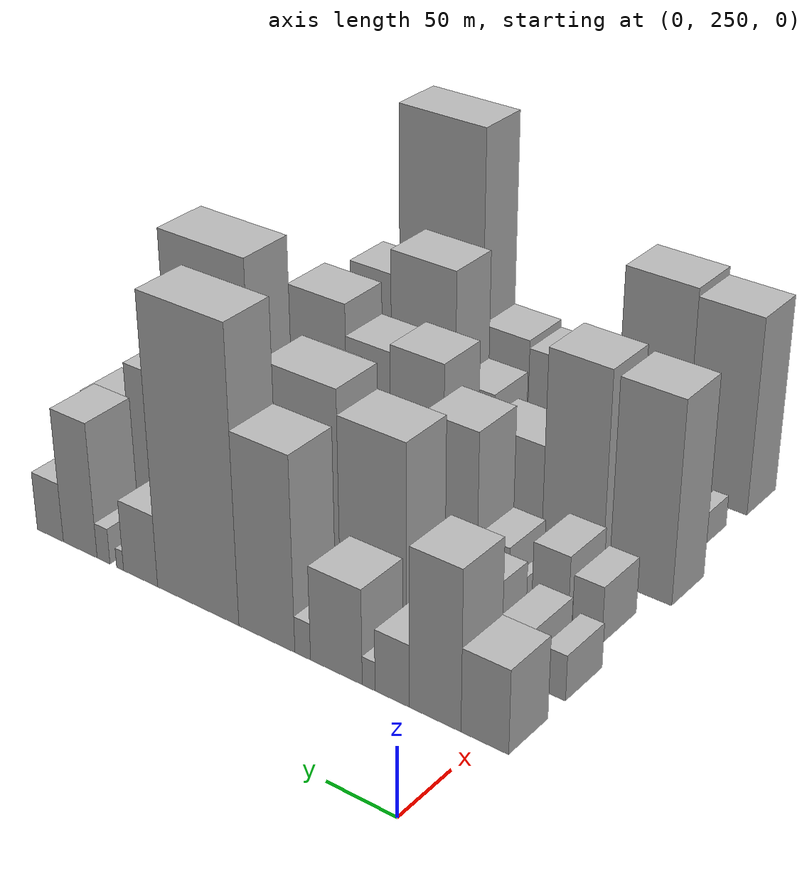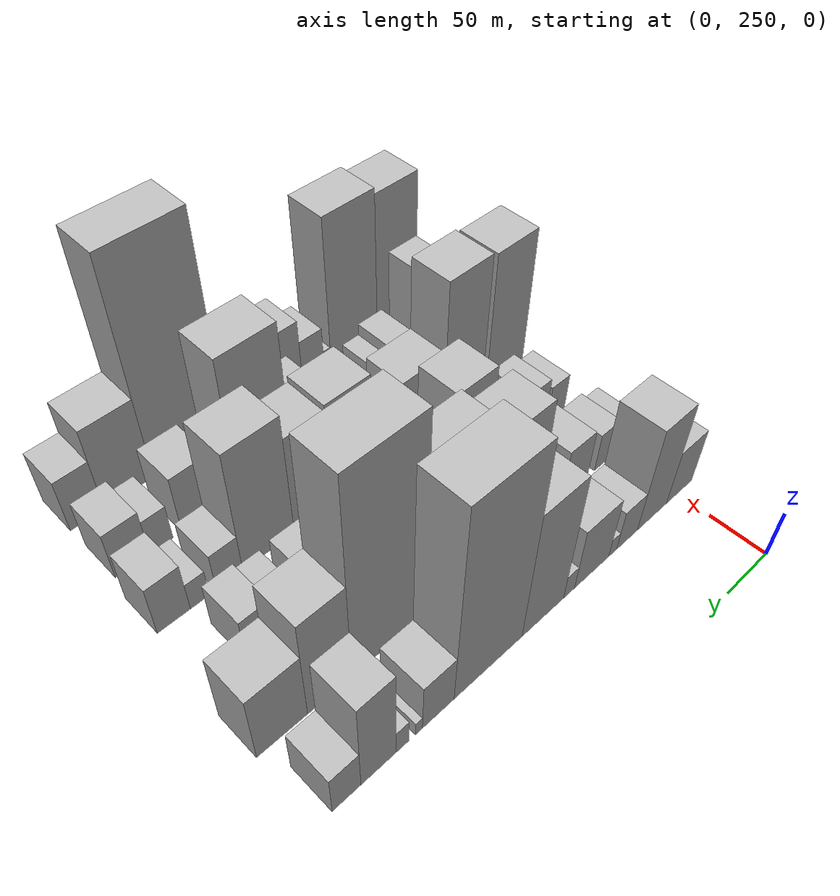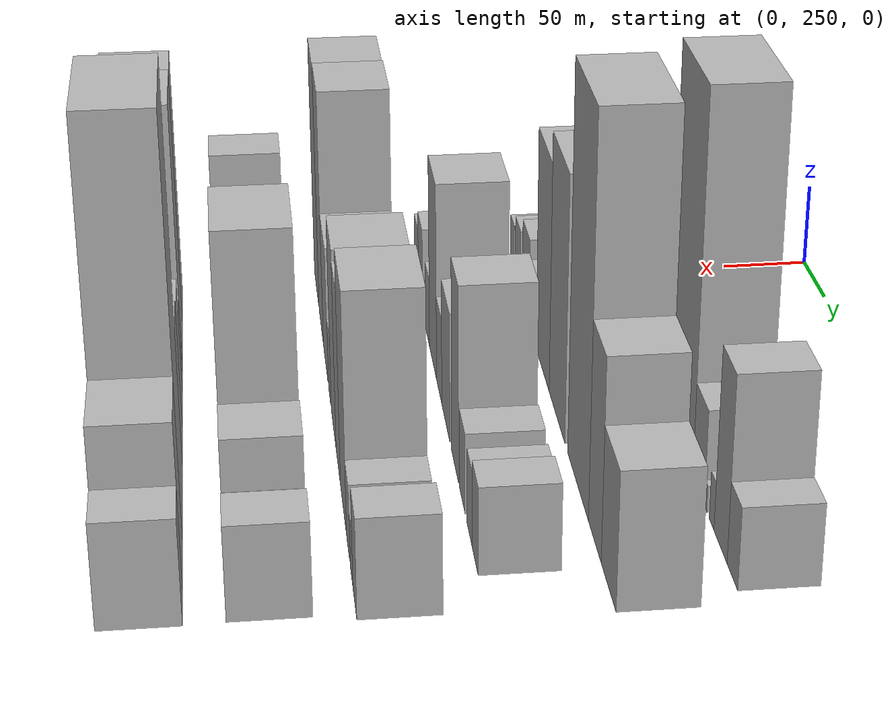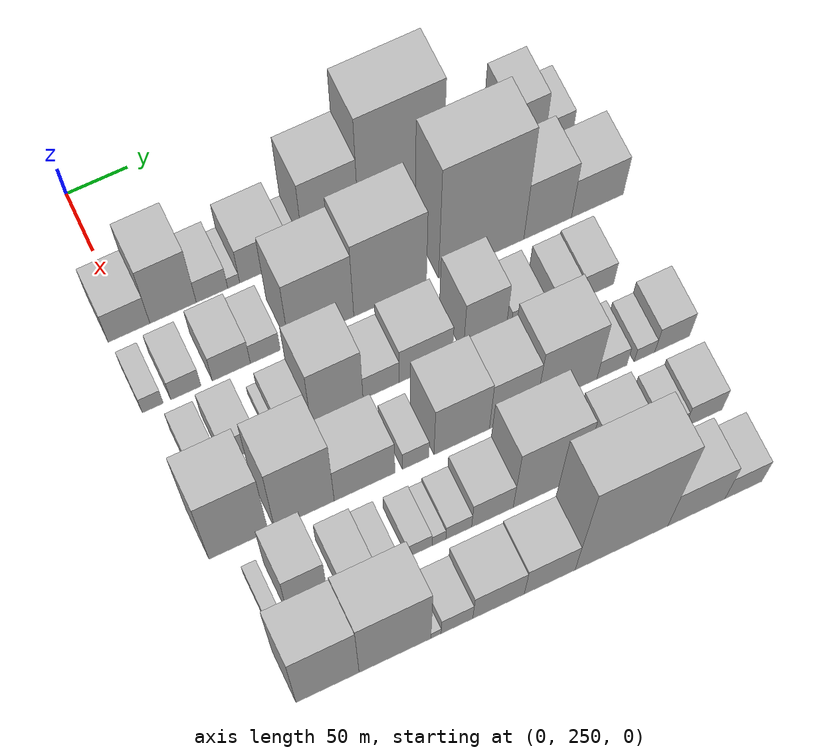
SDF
<sdf version="1.6">
 <world name="default">
  <model name="building_31">
   <static>1</static>
   <pose>100.0000 248.4720 0 0.000000 0.000000 0.000000</pose>
   <link name="link">
    <pose>0 0 30.00 0 0 0</pose>
    <collision name="collision"><geometry><box><size>40.0000 33.4856 60.0000</size></box></geometry></collision>
    <visual name="visual">
     <cast_shadows>0</cast_shadows>
     <geometry><box><size>40.0000 33.4856 60.0000</size></box></geometry>
     <material>
      <script>
       <uri>model://HANNAS_wall/materials/scripts</uri>
       <uri>model://HANNAS_wall/materials/textures</uri>
       <name>vrc/HANNAS_wall</name>
      </script>
     </material>
    </visual>
   </link>
  </model>
  <model name="building_32">
   <static>1</static>
   <pose>100.0000 283.9179 0 0.000000 0.000000 0.000000</pose>
   <link name="link">
    <pose>0 0 57.00 0 0 0</pose>
    <collision name="collision"><geometry><box><size>40.0000 37.4060 114.0000</size></box></geometry></collision>
    <visual name="visual">
     <cast_shadows>0</cast_shadows>
     <geometry><box><size>40.0000 37.4060 114.0000</size></box></geometry>
     <material>
      <script>
       <uri>model://HANNAS_wall/materials/scripts</uri>
       <uri>model://HANNAS_wall/materials/textures</uri>
       <name>vrc/HANNAS_wall</name>
      </script>
     </material>
    </visual>
   </link>
  </model>
  <model name="building_33">
   <static>1</static>
   <pose>100.0000 315.3437 0 0.000000 0.000000 0.000000</pose>
   <link name="link">
    <pose>0 0 22.50 0 0 0</pose>
    <collision name="collision"><geometry><box><size>40.0000 25.4457 45.0000</size></box></geometry></collision>
    <visual name="visual">
     <cast_shadows>0</cast_shadows>
     <geometry><box><size>40.0000 25.4457 45.0000</size></box></geometry>
     <material>
      <script>
       <uri>model://HANNAS_wall/materials/scripts</uri>
       <uri>model://HANNAS_wall/materials/textures</uri>
       <name>vrc/HANNAS_wall</name>
      </script>
     </material>
    </visual>
   </link>
  </model>
  <model name="building_34">
   <static>1</static>
   <pose>100.0000 332.9142 0 0.000000 0.000000 0.000000</pose>
   <link name="link">
    <pose>0 0 10.50 0 0 0</pose>
    <collision name="collision"><geometry><box><size>40.0000 9.6953 21.0000</size></box></geometry></collision>
    <visual name="visual">
     <cast_shadows>0</cast_shadows>
     <geometry><box><size>40.0000 9.6953 21.0000</size></box></geometry>
     <material>
      <script>
       <uri>model://HANNAS_wall/materials/scripts</uri>
       <uri>model://HANNAS_wall/materials/textures</uri>
       <name>vrc/HANNAS_wall</name>
      </script>
     </material>
    </visual>
   </link>
  </model>
  <model name="building_35">
   <static>1</static>
   <pose>100.0000 357.6976 0 0.000000 0.000000 0.000000</pose>
   <link name="link">
    <pose>0 0 34.50 0 0 0</pose>
    <collision name="collision"><geometry><box><size>40.0000 39.8715 69.0000</size></box></geometry></collision>
    <visual name="visual">
     <cast_shadows>0</cast_shadows>
     <geometry><box><size>40.0000 39.8715 69.0000</size></box></geometry>
     <material>
      <script>
       <uri>model://HANNAS_wall/materials/scripts</uri>
       <uri>model://HANNAS_wall/materials/textures</uri>
       <name>vrc/HANNAS_wall</name>
      </script>
     </material>
    </visual>
   </link>
  </model>
  <model name="building_36">
   <static>1</static>
   <pose>100.0000 383.7980 0 0.000000 0.000000 0.000000</pose>
   <link name="link">
    <pose>0 0 13.50 0 0 0</pose>
    <collision name="collision"><geometry><box><size>40.0000 12.3293 27.0000</size></box></geometry></collision>
    <visual name="visual">
     <cast_shadows>0</cast_shadows>
     <geometry><box><size>40.0000 12.3293 27.0000</size></box></geometry>
     <material>
      <script>
       <uri>model://HANNAS_wall/materials/scripts</uri>
       <uri>model://HANNAS_wall/materials/textures</uri>
       <name>vrc/HANNAS_wall</name>
      </script>
     </material>
    </visual>
   </link>
  </model>
  <model name="building_37">
   <static>1</static>
   <pose>100.0000 412.5606 0 0.000000 0.000000 0.000000</pose>
   <link name="link">
    <pose>0 0 70.50 0 0 0</pose>
    <collision name="collision"><geometry><box><size>40.0000 45.1959 141.0000</size></box></geometry></collision>
    <visual name="visual">
     <cast_shadows>0</cast_shadows>
     <geometry><box><size>40.0000 45.1959 141.0000</size></box></geometry>
     <material>
      <script>
       <uri>model://HANNAS_wall/materials/scripts</uri>
       <uri>model://HANNAS_wall/materials/textures</uri>
       <name>vrc/HANNAS_wall</name>
      </script>
     </material>
    </visual>
   </link>
  </model>
  <model name="building_38">
   <static>1</static>
   <pose>100.0000 469.5665 0 0.000000 0.000000 0.000000</pose>
   <link name="link">
    <pose>0 0 106.50 0 0 0</pose>
    <collision name="collision"><geometry><box><size>40.0000 68.8157 213.0000</size></box></geometry></collision>
    <visual name="visual">
     <cast_shadows>0</cast_shadows>
     <geometry><box><size>40.0000 68.8157 213.0000</size></box></geometry>
     <material>
      <script>
       <uri>model://HANNAS_wall/materials/scripts</uri>
       <uri>model://HANNAS_wall/materials/textures</uri>
       <name>vrc/HANNAS_wall</name>
      </script>
     </material>
    </visual>
   </link>
  </model>
  <model name="building_39">
   <static>1</static>
   <pose>100.0000 518.9852 0 0.000000 0.000000 0.000000</pose>
   <link name="link">
    <pose>0 0 27.00 0 0 0</pose>
    <collision name="collision"><geometry><box><size>40.0000 30.0217 54.0000</size></box></geometry></collision>
    <visual name="visual">
     <cast_shadows>0</cast_shadows>
     <geometry><box><size>40.0000 30.0217 54.0000</size></box></geometry>
     <material>
      <script>
       <uri>model://HANNAS_wall/materials/scripts</uri>
       <uri>model://HANNAS_wall/materials/textures</uri>
       <name>vrc/HANNAS_wall</name>
      </script>
     </material>
    </visual>
   </link>
  </model>
  <model name="building_40">
   <static>1</static>
   <pose>100.0000 537.1029 0 0.000000 0.000000 0.000000</pose>
   <link name="link">
    <pose>0 0 7.50 0 0 0</pose>
    <collision name="collision"><geometry><box><size>40.0000 6.2136 15.0000</size></box></geometry></collision>
    <visual name="visual">
     <cast_shadows>0</cast_shadows>
     <geometry><box><size>40.0000 6.2136 15.0000</size></box></geometry>
     <material>
      <script>
       <uri>model://HANNAS_wall/materials/scripts</uri>
       <uri>model://HANNAS_wall/materials/textures</uri>
       <name>vrc/HANNAS_wall</name>
      </script>
     </material>
    </visual>
   </link>
  </model>
  <model name="building_41">
   <static>1</static>
   <pose>100.0000 551.9933 0 0.000000 0.000000 0.000000</pose>
   <link name="link">
    <pose>0 0 13.50 0 0 0</pose>
    <collision name="collision"><geometry><box><size>40.0000 11.5673 27.0000</size></box></geometry></collision>
    <visual name="visual">
     <cast_shadows>0</cast_shadows>
     <geometry><box><size>40.0000 11.5673 27.0000</size></box></geometry>
     <material>
      <script>
       <uri>model://HANNAS_wall/materials/scripts</uri>
       <uri>model://HANNAS_wall/materials/textures</uri>
       <name>vrc/HANNAS_wall</name>
      </script>
     </material>
    </visual>
   </link>
  </model>
  <model name="building_42">
   <static>1</static>
   <pose>100.0000 573.2846 0 0.000000 0.000000 0.000000</pose>
   <link name="link">
    <pose>0 0 51.00 0 0 0</pose>
    <collision name="collision"><geometry><box><size>40.0000 31.0153 102.0000</size></box></geometry></collision>
    <visual name="visual">
     <cast_shadows>0</cast_shadows>
     <geometry><box><size>40.0000 31.0153 102.0000</size></box></geometry>
     <material>
      <script>
       <uri>model://HANNAS_wall/materials/scripts</uri>
       <uri>model://HANNAS_wall/materials/textures</uri>
       <name>vrc/HANNAS_wall</name>
      </script>
     </material>
    </visual>
   </link>
  </model>
  <model name="building_43">
   <static>1</static>
   <pose>100.0000 600.9570 0 0.000000 0.000000 0.000000</pose>
   <link name="link">
    <pose>0 0 22.50 0 0 0</pose>
    <collision name="collision"><geometry><box><size>40.0000 24.3294 45.0000</size></box></geometry></collision>
    <visual name="visual">
     <cast_shadows>0</cast_shadows>
     <geometry><box><size>40.0000 24.3294 45.0000</size></box></geometry>
     <material>
      <script>
       <uri>model://HANNAS_wall/materials/scripts</uri>
       <uri>model://HANNAS_wall/materials/textures</uri>
       <name>vrc/HANNAS_wall</name>
      </script>
     </material>
    </visual>
   </link>
  </model>
  <model name="building_88">
   <static>1</static>
   <pose>160.0000 240.9930 0 0.000000 0.000000 0.000000</pose>
   <link name="link">
    <pose>0 0 16.50 0 0 0</pose>
    <collision name="collision"><geometry><box><size>40.0000 16.7067 33.0000</size></box></geometry></collision>
    <visual name="visual">
     <cast_shadows>0</cast_shadows>
     <geometry><box><size>40.0000 16.7067 33.0000</size></box></geometry>
     <material>
      <script>
       <uri>model://HANNAS_wall/materials/scripts</uri>
       <uri>model://HANNAS_wall/materials/textures</uri>
       <name>vrc/HANNAS_wall</name>
      </script>
     </material>
    </visual>
   </link>
  </model>
  <model name="building_89">
   <static>1</static>
   <pose>160.0000 267.4266 0 0.000000 0.000000 0.000000</pose>
   <link name="link">
    <pose>0 0 21.00 0 0 0</pose>
    <collision name="collision"><geometry><box><size>40.0000 24.1605 42.0000</size></box></geometry></collision>
    <visual name="visual">
     <cast_shadows>0</cast_shadows>
     <geometry><box><size>40.0000 24.1605 42.0000</size></box></geometry>
     <material>
      <script>
       <uri>model://HANNAS_wall/materials/scripts</uri>
       <uri>model://HANNAS_wall/materials/textures</uri>
       <name>vrc/HANNAS_wall</name>
      </script>
     </material>
    </visual>
   </link>
  </model>
  <model name="building_90">
   <static>1</static>
   <pose>160.0000 303.7894 0 0.000000 0.000000 0.000000</pose>
   <link name="link">
    <pose>0 0 27.00 0 0 0</pose>
    <collision name="collision"><geometry><box><size>40.0000 30.5651 54.0000</size></box></geometry></collision>
    <visual name="visual">
     <cast_shadows>0</cast_shadows>
     <geometry><box><size>40.0000 30.5651 54.0000</size></box></geometry>
     <material>
      <script>
       <uri>model://HANNAS_wall/materials/scripts</uri>
       <uri>model://HANNAS_wall/materials/textures</uri>
       <name>vrc/HANNAS_wall</name>
      </script>
     </material>
    </visual>
   </link>
  </model>
  <model name="building_91">
   <static>1</static>
   <pose>160.0000 331.0938 0 0.000000 0.000000 0.000000</pose>
   <link name="link">
    <pose>0 0 21.00 0 0 0</pose>
    <collision name="collision"><geometry><box><size>40.0000 24.0438 42.0000</size></box></geometry></collision>
    <visual name="visual">
     <cast_shadows>0</cast_shadows>
     <geometry><box><size>40.0000 24.0438 42.0000</size></box></geometry>
     <material>
      <script>
       <uri>model://HANNAS_wall/materials/scripts</uri>
       <uri>model://HANNAS_wall/materials/textures</uri>
       <name>vrc/HANNAS_wall</name>
      </script>
     </material>
    </visual>
   </link>
  </model>
  <model name="building_92">
   <static>1</static>
   <pose>160.0000 376.3943 0 0.000000 0.000000 0.000000</pose>
   <link name="link">
    <pose>0 0 67.50 0 0 0</pose>
    <collision name="collision"><geometry><box><size>40.0000 52.5571 135.0000</size></box></geometry></collision>
    <visual name="visual">
     <cast_shadows>0</cast_shadows>
     <geometry><box><size>40.0000 52.5571 135.0000</size></box></geometry>
     <material>
      <script>
       <uri>model://HANNAS_wall/materials/scripts</uri>
       <uri>model://HANNAS_wall/materials/textures</uri>
       <name>vrc/HANNAS_wall</name>
      </script>
     </material>
    </visual>
   </link>
  </model>
  <model name="building_93">
   <static>1</static>
   <pose>160.0000 432.2911 0 0.000000 0.000000 0.000000</pose>
   <link name="link">
    <pose>0 0 76.50 0 0 0</pose>
    <collision name="collision"><geometry><box><size>40.0000 59.2366 153.0000</size></box></geometry></collision>
    <visual name="visual">
     <cast_shadows>0</cast_shadows>
     <geometry><box><size>40.0000 59.2366 153.0000</size></box></geometry>
     <material>
      <script>
       <uri>model://HANNAS_wall/materials/scripts</uri>
       <uri>model://HANNAS_wall/materials/textures</uri>
       <name>vrc/HANNAS_wall</name>
      </script>
     </material>
    </visual>
   </link>
  </model>
  <model name="building_94">
   <static>1</static>
   <pose>160.0000 507.0494 0 0.000000 0.000000 0.000000</pose>
   <link name="link">
    <pose>0 0 109.50 0 0 0</pose>
    <collision name="collision"><geometry><box><size>40.0000 70.2800 219.0000</size></box></geometry></collision>
    <visual name="visual">
     <cast_shadows>0</cast_shadows>
     <geometry><box><size>40.0000 70.2800 219.0000</size></box></geometry>
     <material>
      <script>
       <uri>model://HANNAS_wall/materials/scripts</uri>
       <uri>model://HANNAS_wall/materials/textures</uri>
       <name>vrc/HANNAS_wall</name>
      </script>
     </material>
    </visual>
   </link>
  </model>
  <model name="building_95">
   <static>1</static>
   <pose>160.0000 562.0030 0 0.000000 0.000000 0.000000</pose>
   <link name="link">
    <pose>0 0 55.50 0 0 0</pose>
    <collision name="collision"><geometry><box><size>40.0000 39.6270 111.0000</size></box></geometry></collision>
    <visual name="visual">
     <cast_shadows>0</cast_shadows>
     <geometry><box><size>40.0000 39.6270 111.0000</size></box></geometry>
     <material>
      <script>
       <uri>model://HANNAS_wall/materials/scripts</uri>
       <uri>model://HANNAS_wall/materials/textures</uri>
       <name>vrc/HANNAS_wall</name>
      </script>
     </material>
    </visual>
   </link>
  </model>
  <model name="building_96">
   <static>1</static>
   <pose>160.0000 603.4719 0 0.000000 0.000000 0.000000</pose>
   <link name="link">
    <pose>0 0 37.50 0 0 0</pose>
    <collision name="collision"><geometry><box><size>40.0000 43.3110 75.0000</size></box></geometry></collision>
    <visual name="visual">
     <cast_shadows>0</cast_shadows>
     <geometry><box><size>40.0000 43.3110 75.0000</size></box></geometry>
     <material>
      <script>
       <uri>model://HANNAS_wall/materials/scripts</uri>
       <uri>model://HANNAS_wall/materials/textures</uri>
       <name>vrc/HANNAS_wall</name>
      </script>
     </material>
    </visual>
   </link>
  </model>
  <model name="building_142">
   <static>1</static>
   <pose>220.0000 256.5355 0 0.000000 0.000000 0.000000</pose>
   <link name="link">
    <pose>0 0 21.00 0 0 0</pose>
    <collision name="collision"><geometry><box><size>40.0000 21.8208 42.0000</size></box></geometry></collision>
    <visual name="visual">
     <cast_shadows>0</cast_shadows>
     <geometry><box><size>40.0000 21.8208 42.0000</size></box></geometry>
     <material>
      <script>
       <uri>model://HANNAS_wall/materials/scripts</uri>
       <uri>model://HANNAS_wall/materials/textures</uri>
       <name>vrc/HANNAS_wall</name>
      </script>
     </material>
    </visual>
   </link>
  </model>
  <model name="building_143">
   <static>1</static>
   <pose>220.0000 284.0526 0 0.000000 0.000000 0.000000</pose>
   <link name="link">
    <pose>0 0 27.00 0 0 0</pose>
    <collision name="collision"><geometry><box><size>40.0000 27.2135 54.0000</size></box></geometry></collision>
    <visual name="visual">
     <cast_shadows>0</cast_shadows>
     <geometry><box><size>40.0000 27.2135 54.0000</size></box></geometry>
     <material>
      <script>
       <uri>model://HANNAS_wall/materials/scripts</uri>
       <uri>model://HANNAS_wall/materials/textures</uri>
       <name>vrc/HANNAS_wall</name>
      </script>
     </material>
    </visual>
   </link>
  </model>
  <model name="building_144">
   <static>1</static>
   <pose>220.0000 311.3979 0 0.000000 0.000000 0.000000</pose>
   <link name="link">
    <pose>0 0 9.00 0 0 0</pose>
    <collision name="collision"><geometry><box><size>40.0000 7.4770 18.0000</size></box></geometry></collision>
    <visual name="visual">
     <cast_shadows>0</cast_shadows>
     <geometry><box><size>40.0000 7.4770 18.0000</size></box></geometry>
     <material>
      <script>
       <uri>model://HANNAS_wall/materials/scripts</uri>
       <uri>model://HANNAS_wall/materials/textures</uri>
       <name>vrc/HANNAS_wall</name>
      </script>
     </material>
    </visual>
   </link>
  </model>
  <model name="building_145">
   <static>1</static>
   <pose>220.0000 327.4587 0 0.000000 0.000000 0.000000</pose>
   <link name="link">
    <pose>0 0 21.00 0 0 0</pose>
    <collision name="collision"><geometry><box><size>40.0000 24.6446 42.0000</size></box></geometry></collision>
    <visual name="visual">
     <cast_shadows>0</cast_shadows>
     <geometry><box><size>40.0000 24.6446 42.0000</size></box></geometry>
     <material>
      <script>
       <uri>model://HANNAS_wall/materials/scripts</uri>
       <uri>model://HANNAS_wall/materials/textures</uri>
       <name>vrc/HANNAS_wall</name>
      </script>
     </material>
    </visual>
   </link>
  </model>
  <model name="building_146">
   <static>1</static>
   <pose>220.0000 360.7979 0 0.000000 0.000000 0.000000</pose>
   <link name="link">
    <pose>0 0 58.50 0 0 0</pose>
    <collision name="collision"><geometry><box><size>40.0000 42.0338 117.0000</size></box></geometry></collision>
    <visual name="visual">
     <cast_shadows>0</cast_shadows>
     <geometry><box><size>40.0000 42.0338 117.0000</size></box></geometry>
     <material>
      <script>
       <uri>model://HANNAS_wall/materials/scripts</uri>
       <uri>model://HANNAS_wall/materials/textures</uri>
       <name>vrc/HANNAS_wall</name>
      </script>
     </material>
    </visual>
   </link>
  </model>
  <model name="building_147">
   <static>1</static>
   <pose>220.0000 396.4322 0 0.000000 0.000000 0.000000</pose>
   <link name="link">
    <pose>0 0 25.50 0 0 0</pose>
    <collision name="collision"><geometry><box><size>40.0000 29.2347 51.0000</size></box></geometry></collision>
    <visual name="visual">
     <cast_shadows>0</cast_shadows>
     <geometry><box><size>40.0000 29.2347 51.0000</size></box></geometry>
     <material>
      <script>
       <uri>model://HANNAS_wall/materials/scripts</uri>
       <uri>model://HANNAS_wall/materials/textures</uri>
       <name>vrc/HANNAS_wall</name>
      </script>
     </material>
    </visual>
   </link>
  </model>
  <model name="building_148">
   <static>1</static>
   <pose>220.0000 432.4917 0 0.000000 0.000000 0.000000</pose>
   <link name="link">
    <pose>0 0 37.50 0 0 0</pose>
    <collision name="collision"><geometry><box><size>40.0000 42.8841 75.0000</size></box></geometry></collision>
    <visual name="visual">
     <cast_shadows>0</cast_shadows>
     <geometry><box><size>40.0000 42.8841 75.0000</size></box></geometry>
     <material>
      <script>
       <uri>model://HANNAS_wall/materials/scripts</uri>
       <uri>model://HANNAS_wall/materials/textures</uri>
       <name>vrc/HANNAS_wall</name>
      </script>
     </material>
    </visual>
   </link>
  </model>
  <model name="building_149">
   <static>1</static>
   <pose>220.0000 480.2082 0 0.000000 0.000000 0.000000</pose>
   <link name="link">
    <pose>0 0 55.50 0 0 0</pose>
    <collision name="collision"><geometry><box><size>40.0000 34.5490 111.0000</size></box></geometry></collision>
    <visual name="visual">
     <cast_shadows>0</cast_shadows>
     <geometry><box><size>40.0000 34.5490 111.0000</size></box></geometry>
     <material>
      <script>
       <uri>model://HANNAS_wall/materials/scripts</uri>
       <uri>model://HANNAS_wall/materials/textures</uri>
       <name>vrc/HANNAS_wall</name>
      </script>
     </material>
    </visual>
   </link>
  </model>
  <model name="building_150">
   <static>1</static>
   <pose>220.0000 514.9039 0 0.000000 0.000000 0.000000</pose>
   <link name="link">
    <pose>0 0 22.50 0 0 0</pose>
    <collision name="collision"><geometry><box><size>40.0000 26.8422 45.0000</size></box></geometry></collision>
    <visual name="visual">
     <cast_shadows>0</cast_shadows>
     <geometry><box><size>40.0000 26.8422 45.0000</size></box></geometry>
     <material>
      <script>
       <uri>model://HANNAS_wall/materials/scripts</uri>
       <uri>model://HANNAS_wall/materials/textures</uri>
       <name>vrc/HANNAS_wall</name>
      </script>
     </material>
    </visual>
   </link>
  </model>
  <model name="building_151">
   <static>1</static>
   <pose>220.0000 548.6387 0 0.000000 0.000000 0.000000</pose>
   <link name="link">
    <pose>0 0 21.00 0 0 0</pose>
    <collision name="collision"><geometry><box><size>40.0000 22.6276 42.0000</size></box></geometry></collision>
    <visual name="visual">
     <cast_shadows>0</cast_shadows>
     <geometry><box><size>40.0000 22.6276 42.0000</size></box></geometry>
     <material>
      <script>
       <uri>model://HANNAS_wall/materials/scripts</uri>
       <uri>model://HANNAS_wall/materials/textures</uri>
       <name>vrc/HANNAS_wall</name>
      </script>
     </material>
    </visual>
   </link>
  </model>
  <model name="building_152">
   <static>1</static>
   <pose>220.0000 573.1847 0 0.000000 0.000000 0.000000</pose>
   <link name="link">
    <pose>0 0 24.00 0 0 0</pose>
    <collision name="collision"><geometry><box><size>40.0000 26.4643 48.0000</size></box></geometry></collision>
    <visual name="visual">
     <cast_shadows>0</cast_shadows>
     <geometry><box><size>40.0000 26.4643 48.0000</size></box></geometry>
     <material>
      <script>
       <uri>model://HANNAS_wall/materials/scripts</uri>
       <uri>model://HANNAS_wall/materials/textures</uri>
       <name>vrc/HANNAS_wall</name>
      </script>
     </material>
    </visual>
   </link>
  </model>
  <model name="building_194">
   <static>1</static>
   <pose>280.0000 255.0971 0 0.000000 0.000000 0.000000</pose>
   <link name="link">
    <pose>0 0 75.00 0 0 0</pose>
    <collision name="collision"><geometry><box><size>40.0000 46.6179 150.0000</size></box></geometry></collision>
    <visual name="visual">
     <cast_shadows>0</cast_shadows>
     <geometry><box><size>40.0000 46.6179 150.0000</size></box></geometry>
     <material>
      <script>
       <uri>model://HANNAS_wall/materials/scripts</uri>
       <uri>model://HANNAS_wall/materials/textures</uri>
       <name>vrc/HANNAS_wall</name>
      </script>
     </material>
    </visual>
   </link>
  </model>
  <model name="building_195">
   <static>1</static>
   <pose>280.0000 306.9948 0 0.000000 0.000000 0.000000</pose>
   <link name="link">
    <pose>0 0 76.50 0 0 0</pose>
    <collision name="collision"><geometry><box><size>40.0000 47.1775 153.0000</size></box></geometry></collision>
    <visual name="visual">
     <cast_shadows>0</cast_shadows>
     <geometry><box><size>40.0000 47.1775 153.0000</size></box></geometry>
     <material>
      <script>
       <uri>model://HANNAS_wall/materials/scripts</uri>
       <uri>model://HANNAS_wall/materials/textures</uri>
       <name>vrc/HANNAS_wall</name>
      </script>
     </material>
    </visual>
   </link>
  </model>
  <model name="building_196">
   <static>1</static>
   <pose>280.0000 354.7369 0 0.000000 0.000000 0.000000</pose>
   <link name="link">
    <pose>0 0 40.50 0 0 0</pose>
    <collision name="collision"><geometry><box><size>40.0000 48.3067 81.0000</size></box></geometry></collision>
    <visual name="visual">
     <cast_shadows>0</cast_shadows>
     <geometry><box><size>40.0000 48.3067 81.0000</size></box></geometry>
     <material>
      <script>
       <uri>model://HANNAS_wall/materials/scripts</uri>
       <uri>model://HANNAS_wall/materials/textures</uri>
       <name>vrc/HANNAS_wall</name>
      </script>
     </material>
    </visual>
   </link>
  </model>
  <model name="building_197">
   <static>1</static>
   <pose>280.0000 395.5347 0 0.000000 0.000000 0.000000</pose>
   <link name="link">
    <pose>0 0 21.00 0 0 0</pose>
    <collision name="collision"><geometry><box><size>40.0000 21.2889 42.0000</size></box></geometry></collision>
    <visual name="visual">
     <cast_shadows>0</cast_shadows>
     <geometry><box><size>40.0000 21.2889 42.0000</size></box></geometry>
     <material>
      <script>
       <uri>model://HANNAS_wall/materials/scripts</uri>
       <uri>model://HANNAS_wall/materials/textures</uri>
       <name>vrc/HANNAS_wall</name>
      </script>
     </material>
    </visual>
   </link>
  </model>
  <model name="building_198">
   <static>1</static>
   <pose>280.0000 432.4791 0 0.000000 0.000000 0.000000</pose>
   <link name="link">
    <pose>0 0 57.00 0 0 0</pose>
    <collision name="collision"><geometry><box><size>40.0000 44.5999 114.0000</size></box></geometry></collision>
    <visual name="visual">
     <cast_shadows>0</cast_shadows>
     <geometry><box><size>40.0000 44.5999 114.0000</size></box></geometry>
     <material>
      <script>
       <uri>model://HANNAS_wall/materials/scripts</uri>
       <uri>model://HANNAS_wall/materials/textures</uri>
       <name>vrc/HANNAS_wall</name>
      </script>
     </material>
    </visual>
   </link>
  </model>
  <model name="building_199">
   <static>1</static>
   <pose>280.0000 473.6964 0 0.000000 0.000000 0.000000</pose>
   <link name="link">
    <pose>0 0 54.00 0 0 0</pose>
    <collision name="collision"><geometry><box><size>40.0000 37.8347 108.0000</size></box></geometry></collision>
    <visual name="visual">
     <cast_shadows>0</cast_shadows>
     <geometry><box><size>40.0000 37.8347 108.0000</size></box></geometry>
     <material>
      <script>
       <uri>model://HANNAS_wall/materials/scripts</uri>
       <uri>model://HANNAS_wall/materials/textures</uri>
       <name>vrc/HANNAS_wall</name>
      </script>
     </material>
    </visual>
   </link>
  </model>
  <model name="building_200">
   <static>1</static>
   <pose>280.0000 517.4471 0 0.000000 0.000000 0.000000</pose>
   <link name="link">
    <pose>0 0 66.00 0 0 0</pose>
    <collision name="collision"><geometry><box><size>40.0000 49.6668 132.0000</size></box></geometry></collision>
    <visual name="visual">
     <cast_shadows>0</cast_shadows>
     <geometry><box><size>40.0000 49.6668 132.0000</size></box></geometry>
     <material>
      <script>
       <uri>model://HANNAS_wall/materials/scripts</uri>
       <uri>model://HANNAS_wall/materials/textures</uri>
       <name>vrc/HANNAS_wall</name>
      </script>
     </material>
    </visual>
   </link>
  </model>
  <model name="building_201">
   <static>1</static>
   <pose>280.0000 554.5519 0 0.000000 0.000000 0.000000</pose>
   <link name="link">
    <pose>0 0 21.00 0 0 0</pose>
    <collision name="collision"><geometry><box><size>40.0000 24.5430 42.0000</size></box></geometry></collision>
    <visual name="visual">
     <cast_shadows>0</cast_shadows>
     <geometry><box><size>40.0000 24.5430 42.0000</size></box></geometry>
     <material>
      <script>
       <uri>model://HANNAS_wall/materials/scripts</uri>
       <uri>model://HANNAS_wall/materials/textures</uri>
       <name>vrc/HANNAS_wall</name>
      </script>
     </material>
    </visual>
   </link>
  </model>
  <model name="building_202">
   <static>1</static>
   <pose>280.0000 581.3091 0 0.000000 0.000000 0.000000</pose>
   <link name="link">
    <pose>0 0 15.00 0 0 0</pose>
    <collision name="collision"><geometry><box><size>40.0000 16.9715 30.0000</size></box></geometry></collision>
    <visual name="visual">
     <cast_shadows>0</cast_shadows>
     <geometry><box><size>40.0000 16.9715 30.0000</size></box></geometry>
     <material>
      <script>
       <uri>model://HANNAS_wall/materials/scripts</uri>
       <uri>model://HANNAS_wall/materials/textures</uri>
       <name>vrc/HANNAS_wall</name>
      </script>
     </material>
    </visual>
   </link>
  </model>
  <model name="building_203">
   <static>1</static>
   <pose>280.0000 604.1404 0 0.000000 0.000000 0.000000</pose>
   <link name="link">
    <pose>0 0 27.00 0 0 0</pose>
    <collision name="collision"><geometry><box><size>40.0000 28.6910 54.0000</size></box></geometry></collision>
    <visual name="visual">
     <cast_shadows>0</cast_shadows>
     <geometry><box><size>40.0000 28.6910 54.0000</size></box></geometry>
     <material>
      <script>
       <uri>model://HANNAS_wall/materials/scripts</uri>
       <uri>model://HANNAS_wall/materials/textures</uri>
       <name>vrc/HANNAS_wall</name>
      </script>
     </material>
    </visual>
   </link>
  </model>
  <model name="building_253">
   <static>1</static>
   <pose>340.0000 255.0827 0 0.000000 0.000000 0.000000</pose>
   <link name="link">
    <pose>0 0 12.00 0 0 0</pose>
    <collision name="collision"><geometry><box><size>40.0000 11.3260 24.0000</size></box></geometry></collision>
    <visual name="visual">
     <cast_shadows>0</cast_shadows>
     <geometry><box><size>40.0000 11.3260 24.0000</size></box></geometry>
     <material>
      <script>
       <uri>model://HANNAS_wall/materials/scripts</uri>
       <uri>model://HANNAS_wall/materials/textures</uri>
       <name>vrc/HANNAS_wall</name>
      </script>
     </material>
    </visual>
   </link>
  </model>
  <model name="building_254">
   <static>1</static>
   <pose>340.0000 281.5272 0 0.000000 0.000000 0.000000</pose>
   <link name="link">
    <pose>0 0 52.50 0 0 0</pose>
    <collision name="collision"><geometry><box><size>40.0000 31.5629 105.0000</size></box></geometry></collision>
    <visual name="visual">
     <cast_shadows>0</cast_shadows>
     <geometry><box><size>40.0000 31.5629 105.0000</size></box></geometry>
     <material>
      <script>
       <uri>model://HANNAS_wall/materials/scripts</uri>
       <uri>model://HANNAS_wall/materials/textures</uri>
       <name>vrc/HANNAS_wall</name>
      </script>
     </material>
    </visual>
   </link>
  </model>
  <model name="building_255">
   <static>1</static>
   <pose>340.0000 319.9562 0 0.000000 0.000000 0.000000</pose>
   <link name="link">
    <pose>0 0 24.00 0 0 0</pose>
    <collision name="collision"><geometry><box><size>40.0000 27.2950 48.0000</size></box></geometry></collision>
    <visual name="visual">
     <cast_shadows>0</cast_shadows>
     <geometry><box><size>40.0000 27.2950 48.0000</size></box></geometry>
     <material>
      <script>
       <uri>model://HANNAS_wall/materials/scripts</uri>
       <uri>model://HANNAS_wall/materials/textures</uri>
       <name>vrc/HANNAS_wall</name>
      </script>
     </material>
    </visual>
   </link>
  </model>
  <model name="building_256">
   <static>1</static>
   <pose>340.0000 342.8380 0 0.000000 0.000000 0.000000</pose>
   <link name="link">
    <pose>0 0 18.00 0 0 0</pose>
    <collision name="collision"><geometry><box><size>40.0000 18.4688 36.0000</size></box></geometry></collision>
    <visual name="visual">
     <cast_shadows>0</cast_shadows>
     <geometry><box><size>40.0000 18.4688 36.0000</size></box></geometry>
     <material>
      <script>
       <uri>model://HANNAS_wall/materials/scripts</uri>
       <uri>model://HANNAS_wall/materials/textures</uri>
       <name>vrc/HANNAS_wall</name>
      </script>
     </material>
    </visual>
   </link>
  </model>
  <model name="building_257">
   <static>1</static>
   <pose>340.0000 369.8910 0 0.000000 0.000000 0.000000</pose>
   <link name="link">
    <pose>0 0 16.50 0 0 0</pose>
    <collision name="collision"><geometry><box><size>40.0000 19.6371 33.0000</size></box></geometry></collision>
    <visual name="visual">
     <cast_shadows>0</cast_shadows>
     <geometry><box><size>40.0000 19.6371 33.0000</size></box></geometry>
     <material>
      <script>
       <uri>model://HANNAS_wall/materials/scripts</uri>
       <uri>model://HANNAS_wall/materials/textures</uri>
       <name>vrc/HANNAS_wall</name>
      </script>
     </material>
    </visual>
   </link>
  </model>
  <model name="building_258">
   <static>1</static>
   <pose>340.0000 385.1897 0 0.000000 0.000000 0.000000</pose>
   <link name="link">
    <pose>0 0 13.50 0 0 0</pose>
    <collision name="collision"><geometry><box><size>40.0000 10.9604 27.0000</size></box></geometry></collision>
    <visual name="visual">
     <cast_shadows>0</cast_shadows>
     <geometry><box><size>40.0000 10.9604 27.0000</size></box></geometry>
     <material>
      <script>
       <uri>model://HANNAS_wall/materials/scripts</uri>
       <uri>model://HANNAS_wall/materials/textures</uri>
       <name>vrc/HANNAS_wall</name>
      </script>
     </material>
    </visual>
   </link>
  </model>
  <model name="building_259">
   <static>1</static>
   <pose>340.0000 400.9178 0 0.000000 0.000000 0.000000</pose>
   <link name="link">
    <pose>0 0 18.00 0 0 0</pose>
    <collision name="collision"><geometry><box><size>40.0000 20.4958 36.0000</size></box></geometry></collision>
    <visual name="visual">
     <cast_shadows>0</cast_shadows>
     <geometry><box><size>40.0000 20.4958 36.0000</size></box></geometry>
     <material>
      <script>
       <uri>model://HANNAS_wall/materials/scripts</uri>
       <uri>model://HANNAS_wall/materials/textures</uri>
       <name>vrc/HANNAS_wall</name>
      </script>
     </material>
    </visual>
   </link>
  </model>
  <model name="building_260">
   <static>1</static>
   <pose>340.0000 427.7591 0 0.000000 0.000000 0.000000</pose>
   <link name="link">
    <pose>0 0 31.50 0 0 0</pose>
    <collision name="collision"><geometry><box><size>40.0000 33.1869 63.0000</size></box></geometry></collision>
    <visual name="visual">
     <cast_shadows>0</cast_shadows>
     <geometry><box><size>40.0000 33.1869 63.0000</size></box></geometry>
     <material>
      <script>
       <uri>model://HANNAS_wall/materials/scripts</uri>
       <uri>model://HANNAS_wall/materials/textures</uri>
       <name>vrc/HANNAS_wall</name>
      </script>
     </material>
    </visual>
   </link>
  </model>
  <model name="building_261">
   <static>1</static>
   <pose>340.0000 472.2505 0 0.000000 0.000000 0.000000</pose>
   <link name="link">
    <pose>0 0 73.50 0 0 0</pose>
    <collision name="collision"><geometry><box><size>40.0000 55.7959 147.0000</size></box></geometry></collision>
    <visual name="visual">
     <cast_shadows>0</cast_shadows>
     <geometry><box><size>40.0000 55.7959 147.0000</size></box></geometry>
     <material>
      <script>
       <uri>model://HANNAS_wall/materials/scripts</uri>
       <uri>model://HANNAS_wall/materials/textures</uri>
       <name>vrc/HANNAS_wall</name>
      </script>
     </material>
    </visual>
   </link>
  </model>
  <model name="building_262">
   <static>1</static>
   <pose>340.0000 505.0166 0 0.000000 0.000000 0.000000</pose>
   <link name="link">
    <pose>0 0 10.50 0 0 0</pose>
    <collision name="collision"><geometry><box><size>40.0000 9.7363 21.0000</size></box></geometry></collision>
    <visual name="visual">
     <cast_shadows>0</cast_shadows>
     <geometry><box><size>40.0000 9.7363 21.0000</size></box></geometry>
     <material>
      <script>
       <uri>model://HANNAS_wall/materials/scripts</uri>
       <uri>model://HANNAS_wall/materials/textures</uri>
       <name>vrc/HANNAS_wall</name>
      </script>
     </material>
    </visual>
   </link>
  </model>
  <model name="building_263">
   <static>1</static>
   <pose>340.0000 536.0015 0 0.000000 0.000000 0.000000</pose>
   <link name="link">
    <pose>0 0 31.50 0 0 0</pose>
    <collision name="collision"><geometry><box><size>40.0000 36.2335 63.0000</size></box></geometry></collision>
    <visual name="visual">
     <cast_shadows>0</cast_shadows>
     <geometry><box><size>40.0000 36.2335 63.0000</size></box></geometry>
     <material>
      <script>
       <uri>model://HANNAS_wall/materials/scripts</uri>
       <uri>model://HANNAS_wall/materials/textures</uri>
       <name>vrc/HANNAS_wall</name>
      </script>
     </material>
    </visual>
   </link>
  </model>
  <model name="building_264">
   <static>1</static>
   <pose>340.0000 572.7521 0 0.000000 0.000000 0.000000</pose>
   <link name="link">
    <pose>0 0 19.50 0 0 0</pose>
    <collision name="collision"><geometry><box><size>40.0000 21.2677 39.0000</size></box></geometry></collision>
    <visual name="visual">
     <cast_shadows>0</cast_shadows>
     <geometry><box><size>40.0000 21.2677 39.0000</size></box></geometry>
     <material>
      <script>
       <uri>model://HANNAS_wall/materials/scripts</uri>
       <uri>model://HANNAS_wall/materials/textures</uri>
       <name>vrc/HANNAS_wall</name>
      </script>
     </material>
    </visual>
   </link>
  </model>
  <model name="building_265">
   <static>1</static>
   <pose>340.0000 598.6131 0 0.000000 0.000000 0.000000</pose>
   <link name="link">
    <pose>0 0 25.50 0 0 0</pose>
    <collision name="collision"><geometry><box><size>40.0000 30.4543 51.0000</size></box></geometry></collision>
    <visual name="visual">
     <cast_shadows>0</cast_shadows>
     <geometry><box><size>40.0000 30.4543 51.0000</size></box></geometry>
     <material>
      <script>
       <uri>model://HANNAS_wall/materials/scripts</uri>
       <uri>model://HANNAS_wall/materials/textures</uri>
       <name>vrc/HANNAS_wall</name>
      </script>
     </material>
    </visual>
   </link>
  </model>
  <model name="building_309">
   <static>1</static>
   <pose>400.0000 269.2065 0 0.000000 0.000000 0.000000</pose>
   <link name="link">
    <pose>0 0 75.00 0 0 0</pose>
    <collision name="collision"><geometry><box><size>40.0000 49.0264 150.0000</size></box></geometry></collision>
    <visual name="visual">
     <cast_shadows>0</cast_shadows>
     <geometry><box><size>40.0000 49.0264 150.0000</size></box></geometry>
     <material>
      <script>
       <uri>model://HANNAS_wall/materials/scripts</uri>
       <uri>model://HANNAS_wall/materials/textures</uri>
       <name>vrc/HANNAS_wall</name>
      </script>
     </material>
    </visual>
   </link>
  </model>
  <model name="building_310">
   <static>1</static>
   <pose>400.0000 321.7427 0 0.000000 0.000000 0.000000</pose>
   <link name="link">
    <pose>0 0 78.00 0 0 0</pose>
    <collision name="collision"><geometry><box><size>40.0000 56.0461 156.0000</size></box></geometry></collision>
    <visual name="visual">
     <cast_shadows>0</cast_shadows>
     <geometry><box><size>40.0000 56.0461 156.0000</size></box></geometry>
     <material>
      <script>
       <uri>model://HANNAS_wall/materials/scripts</uri>
       <uri>model://HANNAS_wall/materials/textures</uri>
       <name>vrc/HANNAS_wall</name>
      </script>
     </material>
    </visual>
   </link>
  </model>
  <model name="building_311">
   <static>1</static>
   <pose>400.0000 353.7962 0 0.000000 0.000000 0.000000</pose>
   <link name="link">
    <pose>0 0 9.00 0 0 0</pose>
    <collision name="collision"><geometry><box><size>40.0000 8.0609 18.0000</size></box></geometry></collision>
    <visual name="visual">
     <cast_shadows>0</cast_shadows>
     <geometry><box><size>40.0000 8.0609 18.0000</size></box></geometry>
     <material>
      <script>
       <uri>model://HANNAS_wall/materials/scripts</uri>
       <uri>model://HANNAS_wall/materials/textures</uri>
       <name>vrc/HANNAS_wall</name>
      </script>
     </material>
    </visual>
   </link>
  </model>
  <model name="building_312">
   <static>1</static>
   <pose>400.0000 370.2877 0 0.000000 0.000000 0.000000</pose>
   <link name="link">
    <pose>0 0 22.50 0 0 0</pose>
    <collision name="collision"><geometry><box><size>40.0000 24.9221 45.0000</size></box></geometry></collision>
    <visual name="visual">
     <cast_shadows>0</cast_shadows>
     <geometry><box><size>40.0000 24.9221 45.0000</size></box></geometry>
     <material>
      <script>
       <uri>model://HANNAS_wall/materials/scripts</uri>
       <uri>model://HANNAS_wall/materials/textures</uri>
       <name>vrc/HANNAS_wall</name>
      </script>
     </material>
    </visual>
   </link>
  </model>
  <model name="building_313">
   <static>1</static>
   <pose>400.0000 403.1504 0 0.000000 0.000000 0.000000</pose>
   <link name="link">
    <pose>0 0 34.50 0 0 0</pose>
    <collision name="collision"><geometry><box><size>40.0000 40.8033 69.0000</size></box></geometry></collision>
    <visual name="visual">
     <cast_shadows>0</cast_shadows>
     <geometry><box><size>40.0000 40.8033 69.0000</size></box></geometry>
     <material>
      <script>
       <uri>model://HANNAS_wall/materials/scripts</uri>
       <uri>model://HANNAS_wall/materials/textures</uri>
       <name>vrc/HANNAS_wall</name>
      </script>
     </material>
    </visual>
   </link>
  </model>
  <model name="building_314">
   <static>1</static>
   <pose>400.0000 443.7909 0 0.000000 0.000000 0.000000</pose>
   <link name="link">
    <pose>0 0 37.50 0 0 0</pose>
    <collision name="collision"><geometry><box><size>40.0000 40.4777 75.0000</size></box></geometry></collision>
    <visual name="visual">
     <cast_shadows>0</cast_shadows>
     <geometry><box><size>40.0000 40.4777 75.0000</size></box></geometry>
     <material>
      <script>
       <uri>model://HANNAS_wall/materials/scripts</uri>
       <uri>model://HANNAS_wall/materials/textures</uri>
       <name>vrc/HANNAS_wall</name>
      </script>
     </material>
    </visual>
   </link>
  </model>
  <model name="building_315">
   <static>1</static>
   <pose>400.0000 501.2423 0 0.000000 0.000000 0.000000</pose>
   <link name="link">
    <pose>0 0 112.50 0 0 0</pose>
    <collision name="collision"><geometry><box><size>40.0000 74.4251 225.0000</size></box></geometry></collision>
    <visual name="visual">
     <cast_shadows>0</cast_shadows>
     <geometry><box><size>40.0000 74.4251 225.0000</size></box></geometry>
     <material>
      <script>
       <uri>model://HANNAS_wall/materials/scripts</uri>
       <uri>model://HANNAS_wall/materials/textures</uri>
       <name>vrc/HANNAS_wall</name>
      </script>
     </material>
    </visual>
   </link>
  </model>
  <model name="building_316">
   <static>1</static>
   <pose>400.0000 561.5646 0 0.000000 0.000000 0.000000</pose>
   <link name="link">
    <pose>0 0 45.00 0 0 0</pose>
    <collision name="collision"><geometry><box><size>40.0000 46.2195 90.0000</size></box></geometry></collision>
    <visual name="visual">
     <cast_shadows>0</cast_shadows>
     <geometry><box><size>40.0000 46.2195 90.0000</size></box></geometry>
     <material>
      <script>
       <uri>model://HANNAS_wall/materials/scripts</uri>
       <uri>model://HANNAS_wall/materials/textures</uri>
       <name>vrc/HANNAS_wall</name>
      </script>
     </material>
    </visual>
   </link>
  </model>
  <model name="building_317">
   <static>1</static>
   <pose>400.0000 599.7348 0 0.000000 0.000000 0.000000</pose>
   <link name="link">
    <pose>0 0 28.50 0 0 0</pose>
    <collision name="collision"><geometry><box><size>40.0000 30.1211 57.0000</size></box></geometry></collision>
    <visual name="visual">
     <cast_shadows>0</cast_shadows>
     <geometry><box><size>40.0000 30.1211 57.0000</size></box></geometry>
     <material>
      <script>
       <uri>model://HANNAS_wall/materials/scripts</uri>
       <uri>model://HANNAS_wall/materials/textures</uri>
       <name>vrc/HANNAS_wall</name>
      </script>
     </material>
    </visual>
   </link>
  </model>
 </world>
</sdf>
